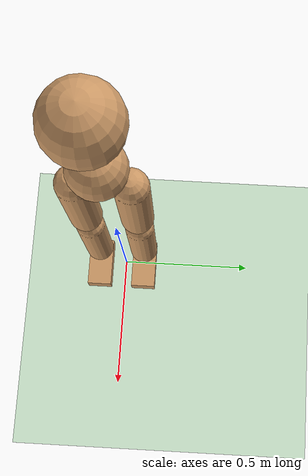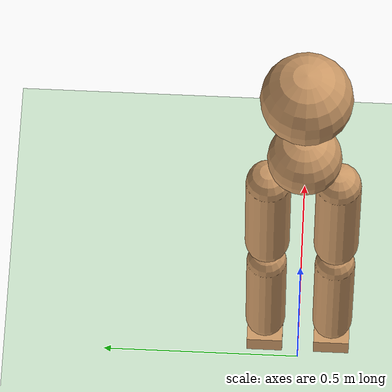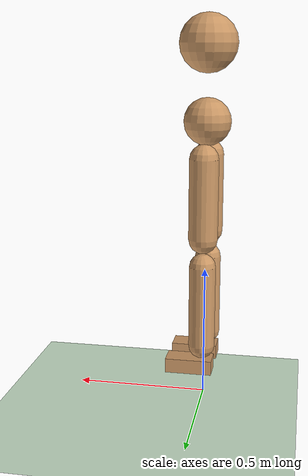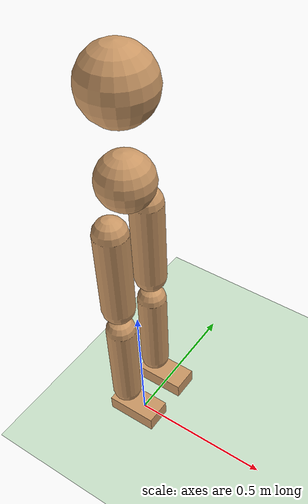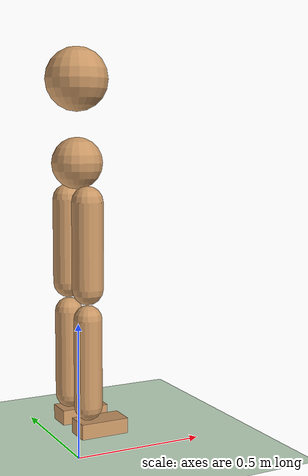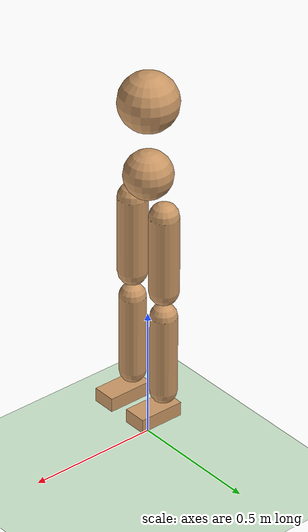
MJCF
<mujoco model="humanoid">
    <compiler angle="degree" inertiafromgeom="true" />
    <default>
        <joint damping=".0" armature="0.01" limited="true" solimplimit="0 .99 .01" />
        <geom conaffinity="1" condim="1" contype="1" margin="0.001" material="geom"
            rgba="0.8 0.6 .4 1" />
        <site material="geom" rgba="0.8 0.6 .4 1" />
        <motor ctrllimited="true" ctrlrange="-1 1" />
    </default>
    <option timestep="0.002" collision="predefined"> </option>
    <size nkey="5" nuser_geom="1" />
    <visual>
        <map fogend="5" fogstart="3" />
    </visual>
    <asset>
        <texture builtin="gradient" height="100" rgb1=".4 .5 .6" rgb2="0 0 0" type="skybox"
            width="100" />
        <texture builtin="flat" height="1278" mark="cross" markrgb="1 1 1" name="texgeom"
            random="0.01" rgb1="0.8 0.6 0.4" rgb2="0.8 0.6 0.4" type="cube" width="127" />
        <texture builtin="checker" height="100" name="texplane" rgb1="0 0 0" rgb2="0.8 0.8 0.8"
            type="2d" width="100" />
        <material name="MatPlane" reflectance="0.5" shininess="1" specular="1" texrepeat="60 60"
            texture="texplane" />
        <material name="geom" texture="texgeom" texuniform="true" />
    </asset>
    <worldbody>
        <light cutoff="100" diffuse="1 1 1" dir="-0 0 -1.3" directional="true" exponent="1"
            pos="0 0 1.3" specular=".1 .1 .1" />
        <geom condim="3" friction="1 .1 .1" material="MatPlane" name="floor" pos="0 0 0"
            rgba="0.8 0.9 0.8 1" size="20 20 0.125" type="plane" />
        <body name="root" pos="0 0 1">
            <camera name="track" mode="trackcom" pos="0 -4 0.7" xyaxes="1 0 0 0 0 1" />
            <geom name="root" pos="0 0 0.07" size=".09" type="sphere" />

            <joint limited="false" name="root" pos="0 0 0" stiffness="0" type="free" />

            <body name="chest" pos="0 0 0.236151">
                <geom name="chest" pos="0 0 0.12" size=".11" type="sphere" />
            </body>
            <body name="right_hip" pos="0 -0.084887 0">
                <geom fromto="0 0 -0.06 0 0 -0.36" name="right_hip" size="0.055" type="capsule" />
                <joint axis="1 0 0" name="right_hip_x" pos="0 0 0" range="-68.75 68.75"
                    stiffness="0" type="hinge" />
                <joint axis="0 1 0" name="right_hip_y" pos="0 0 0" range="-57.3 57.3" stiffness="0"
                    type="hinge" />
                <joint axis="0 0 1" name="right_hip_z" pos="0 0 0" range="-90 147.25" stiffness="0"
                    type="hinge" />
                <body name="right_knee" pos="0 0 -0.421546">
                    <geom fromto="0 0 -0.045 0 0 -0.355" name="right_knee" size="0.05"
                        type="capsule" />
                    <joint axis="0 -1 0" name="right_knee" pos="0 0 0" range="-150 0" stiffness="0"
                        type="hinge" />
                    <body name="right_ankle" pos="0 0 -0.40987">
                        <geom name="right_ankle" pos="0.045 0 -0.0225" size="0.088 0.045 0.027"
                            type="box" />
                        <joint axis="1 0 0" name="right_ankle_x" pos="0 0 0" range="-57.3 57.3"
                            stiffness="0" type="hinge" />
                        <joint axis="0 1 0" name="right_ankle_y" pos="0 0 0" range="-57.3 57.3"
                            stiffness="0" type="hinge" />
                        <joint axis="0 0 1" name="right_ankle_z" pos="0 0 0" range="-90 90"
                            stiffness="0" type="hinge" />
                    </body>
                </body>
            </body>
            <body name="left_hip" pos="0 0.084887 0">
                <geom fromto="0 0 -0.06 0 0 -0.36" name="left_hip" size="0.055" type="capsule" />
                <joint axis="1 0 0" name="left_hip_x" pos="0 0 0" range="-68.75 68.75" stiffness="0"
                    type="hinge" />
                <joint axis="0 1 0" name="left_hip_y" pos="0 0 0" range="-57.3 57.3" stiffness="0"
                    type="hinge" />
                <joint axis="0 0 1" name="left_hip_z" pos="0 0 0" range="-90 147.25" stiffness="0"
                    type="hinge" />
                <body name="left_knee" pos="0 0 -0.421546">
                    <geom fromto="0 0 -0.045 0 0 -0.355" name="left_knee" size="0.05" type="capsule" />
                    <joint axis="0 -1 0" name="left_knee" pos="0 0 0" range="-150 0" stiffness="0"
                        type="hinge" />
                    <body name="left_ankle" pos="0 0 -0.40987">
                        <geom name="left_ankle" pos="0.045 0 -0.0225" size="0.088 0.045 0.027"
                            type="box" />
                        <joint axis="1 0 0" name="left_ankle_x" pos="0 0 0" range="-57.3 57.3"
                            stiffness="0" type="hinge" />
                        <joint axis="0 1 0" name="left_ankle_y" pos="0 0 0" range="-57.3 57.3"
                            stiffness="0" type="hinge" />
                        <joint axis="0 0 1" name="left_ankle_z" pos="0 0 0" range="-90 90"
                            stiffness="0" type="hinge" />
                    </body>
                </body>
            </body>
        </body>
    </worldbody>

    <actuator>
        <motor gear="20" joint="right_hip_x" name="right_hip_x" />
        <motor gear="20" joint="right_hip_y" name="right_hip_y" />
        <motor gear="20" joint="right_hip_z" name="right_hip_z" />
        <motor gear="20" joint="right_knee" name="right_knee" />
        <motor gear="20" joint="right_ankle_x" name="right_ankle_x" />
        <motor gear="20" joint="right_ankle_y" name="right_ankle_y" />
        <motor gear="20" joint="right_ankle_z" name="right_ankle_z" />
        <motor gear="20" joint="left_hip_x" name="left_hip_x" />
        <motor gear="20" joint="left_hip_y" name="left_hip_y" />
        <motor gear="20" joint="left_hip_z" name="left_hip_z" />
        <motor gear="20" joint="left_knee" name="left_knee" />
        <motor gear="20" joint="left_ankle_x" name="left_ankle_x" />
        <motor gear="20" joint="left_ankle_y" name="left_ankle_y" />
        <motor gear="20" joint="left_ankle_z" name="left_ankle_z" />

    </actuator>
</mujoco>
